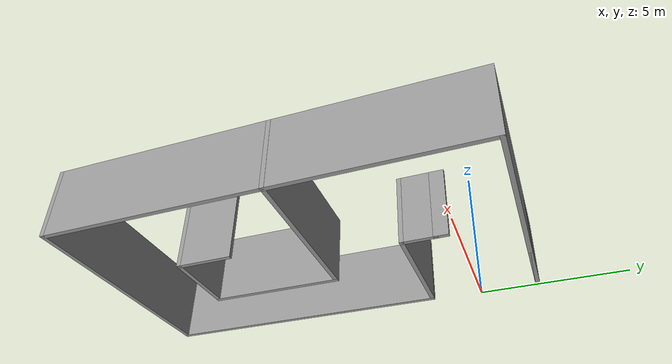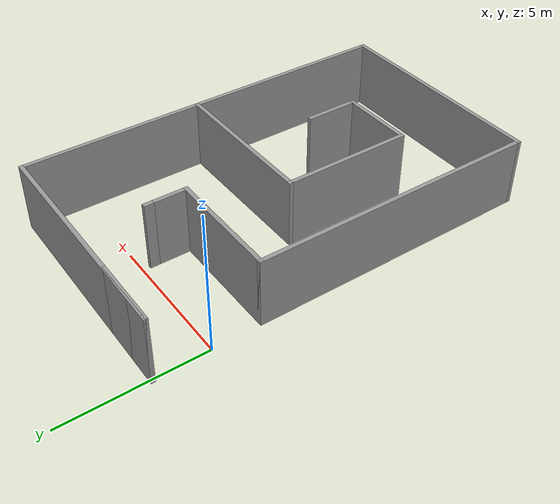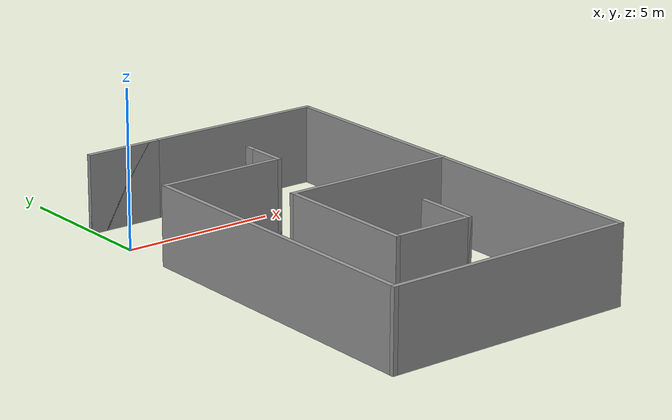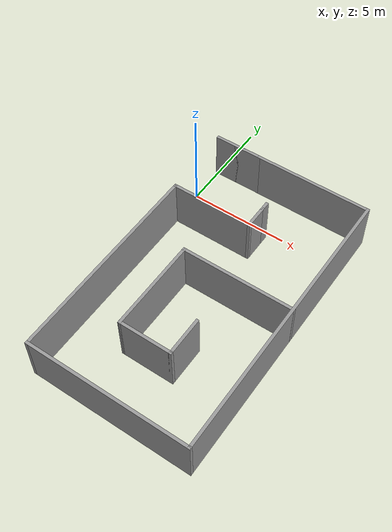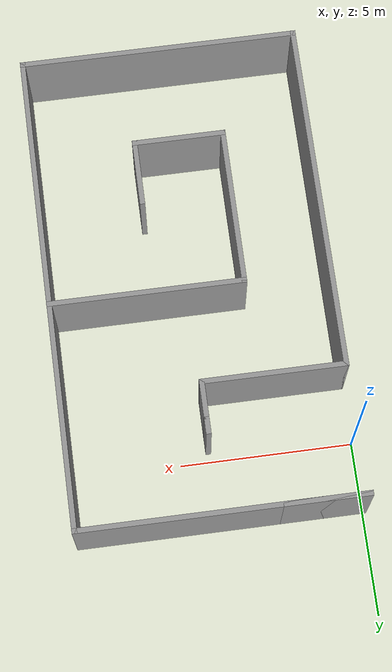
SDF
<?xml version='1.0'?>
<sdf version='1.7'>
  <model name='simple1.world'>
    <pose>4.06075 -5.08444 0 0 -0 0</pose>
    <link name='Wall_45'>
      <collision name='Wall_45_Collision'>
        <geometry>
          <box>
            <size>2.5 0.15 2.5</size>
          </box>
        </geometry>
        <pose>0 0 1.25 0 -0 0</pose>
      </collision>
      <visual name='Wall_45_Visual'>
        <pose>0 0 1.25 0 -0 0</pose>
        <geometry>
          <box>
            <size>2.5 0.15 2.5</size>
          </box>
        </geometry>
        <material>
          <script>
            <uri>file://media/materials/scripts/gazebo.material</uri>
            <name>Gazebo/Grey</name>
          </script>
          <ambient>1 1 1 1</ambient>
        </material>
        <meta>
          <layer>0</layer>
        </meta>
      </visual>
      <pose>-2.92644 7.05 0 0 -0 3.14159</pose>
    </link>
    <link name='Wall_46'>
      <collision name='Wall_46_Collision'>
        <geometry>
          <box>
            <size>2.5 0.15 2.5</size>
          </box>
        </geometry>
        <pose>0 0 1.25 0 -0 0</pose>
      </collision>
      <visual name='Wall_46_Visual'>
        <pose>0 0 1.25 0 -0 0</pose>
        <geometry>
          <box>
            <size>2.5 0.15 2.5</size>
          </box>
        </geometry>
        <material>
          <script>
            <uri>file://media/materials/scripts/gazebo.material</uri>
            <name>Gazebo/Grey</name>
          </script>
          <ambient>1 1 1 1</ambient>
        </material>
        <meta>
          <layer>0</layer>
        </meta>
      </visual>
      <pose>-2.92644 7.05 0 0 -0 0</pose>
    </link>
    <link name='Wall_50'>
      <collision name='Wall_50_Collision'>
        <geometry>
          <box>
            <size>6 0.15 2.5</size>
          </box>
        </geometry>
        <pose>0 0 1.25 0 -0 0</pose>
      </collision>
      <visual name='Wall_50_Visual'>
        <pose>0 0 1.25 0 -0 0</pose>
        <geometry>
          <box>
            <size>6 0.15 2.5</size>
          </box>
        </geometry>
        <material>
          <script>
            <uri>file://media/materials/scripts/gazebo.material</uri>
            <name>Gazebo/Grey</name>
          </script>
          <ambient>1 1 1 1</ambient>
        </material>
        <meta>
          <layer>0</layer>
        </meta>
      </visual>
      <pose>1.17356 7.05 0 0 -0 0</pose>
    </link>
    <link name='Wall_51'>
      <collision name='Wall_51_Collision'>
        <geometry>
          <box>
            <size>14.25 0.15 2.5</size>
          </box>
        </geometry>
        <pose>0 0 1.25 0 -0 0</pose>
      </collision>
      <visual name='Wall_51_Visual'>
        <pose>0 0 1.25 0 -0 0</pose>
        <geometry>
          <box>
            <size>14.25 0.15 2.5</size>
          </box>
        </geometry>
        <material>
          <script>
            <uri>file://media/materials/scripts/gazebo.material</uri>
            <name>Gazebo/Grey</name>
          </script>
          <ambient>1 1 1 1</ambient>
        </material>
        <meta>
          <layer>0</layer>
        </meta>
      </visual>
      <pose>4.09856 0 0 0 -0 -1.5708</pose>
    </link>
    <link name='Wall_52'>
      <collision name='Wall_52_Collision'>
        <geometry>
          <box>
            <size>8.25 0.15 2.5</size>
          </box>
        </geometry>
        <pose>0 0 1.25 0 -0 0</pose>
      </collision>
      <visual name='Wall_52_Visual'>
        <pose>0 0 1.25 0 -0 0</pose>
        <geometry>
          <box>
            <size>8.25 0.15 2.5</size>
          </box>
        </geometry>
        <material>
          <script>
            <uri>file://media/materials/scripts/gazebo.material</uri>
            <name>Gazebo/Grey</name>
          </script>
          <ambient>1 1 1 1</ambient>
        </material>
        <meta>
          <layer>0</layer>
        </meta>
      </visual>
      <pose>0.048556 -7.05 0 0 -0 3.14159</pose>
    </link>
    <link name='Wall_53'>
      <collision name='Wall_53_Collision'>
        <geometry>
          <box>
            <size>10.5 0.15 2.5</size>
          </box>
        </geometry>
        <pose>0 0 1.25 0 -0 0</pose>
      </collision>
      <visual name='Wall_53_Visual'>
        <pose>0 0 1.25 0 -0 0</pose>
        <geometry>
          <box>
            <size>10.5 0.15 2.5</size>
          </box>
        </geometry>
        <material>
          <script>
            <uri>file://media/materials/scripts/gazebo.material</uri>
            <name>Gazebo/Grey</name>
          </script>
          <ambient>1 1 1 1</ambient>
        </material>
        <meta>
          <layer>0</layer>
        </meta>
      </visual>
      <pose>-4.00144 -1.875 0 0 -0 1.5708</pose>
    </link>
    <link name='Wall_55'>
      <collision name='Wall_55_Collision'>
        <geometry>
          <box>
            <size>4.25 0.15 2.5</size>
          </box>
        </geometry>
        <pose>0 0 1.25 0 -0 0</pose>
      </collision>
      <visual name='Wall_55_Visual'>
        <pose>0 0 1.25 0 -0 0</pose>
        <geometry>
          <box>
            <size>4.25 0.15 2.5</size>
          </box>
        </geometry>
        <material>
          <script>
            <uri>file://media/materials/scripts/gazebo.material</uri>
            <name>Gazebo/Grey</name>
          </script>
          <ambient>1 1 1 1</ambient>
        </material>
        <meta>
          <layer>0</layer>
        </meta>
      </visual>
      <pose>-1.95144 3.3 0 0 -0 0</pose>
    </link>
    <link name='Wall_56'>
      <collision name='Wall_56_Collision'>
        <geometry>
          <box>
            <size>1.25 0.15 2.5</size>
          </box>
        </geometry>
        <pose>0 0 1.25 0 -0 0</pose>
      </collision>
      <visual name='Wall_56_Visual'>
        <pose>0 0 1.25 0 -0 0</pose>
        <geometry>
          <box>
            <size>1.25 0.15 2.5</size>
          </box>
        </geometry>
        <material>
          <script>
            <uri>file://media/materials/scripts/gazebo.material</uri>
            <name>Gazebo/Grey</name>
          </script>
          <ambient>1 1 1 1</ambient>
        </material>
        <meta>
          <layer>0</layer>
        </meta>
      </visual>
      <pose>0.098557 3.85 0 0 -0 1.5708</pose>
    </link>
    <link name='Wall_57'>
      <collision name='Wall_57_Collision'>
        <geometry>
          <box>
            <size>0.5 0.15 2.5</size>
          </box>
        </geometry>
        <pose>0 0 1.25 0 -0 0</pose>
      </collision>
      <visual name='Wall_57_Visual'>
        <pose>0 0 1.25 0 -0 0</pose>
        <geometry>
          <box>
            <size>0.5 0.15 2.5</size>
          </box>
        </geometry>
        <material>
          <script>
            <uri>file://media/materials/scripts/gazebo.material</uri>
            <name>Gazebo/Grey</name>
          </script>
          <ambient>1 1 1 1</ambient>
        </material>
        <meta>
          <layer>0</layer>
        </meta>
      </visual>
      <pose>0.098557 4.575 0 0 -0 1.5708</pose>
    </link>
    <link name='Wall_59'>
      <collision name='Wall_59_Collision'>
        <geometry>
          <box>
            <size>5.75 0.15 2.5</size>
          </box>
        </geometry>
        <pose>0 0 1.25 0 -0 0</pose>
      </collision>
      <visual name='Wall_59_Visual'>
        <pose>0 0 1.25 0 -0 0</pose>
        <geometry>
          <box>
            <size>5.75 0.15 2.5</size>
          </box>
        </geometry>
        <material>
          <script>
            <uri>file://media/materials/scripts/gazebo.material</uri>
            <name>Gazebo/Grey</name>
          </script>
          <ambient>1 1 1 1</ambient>
        </material>
        <meta>
          <layer>0</layer>
        </meta>
      </visual>
      <pose>1.30144 0.475889 0 0 -0 3.14159</pose>
    </link>
    <link name='Wall_60'>
      <collision name='Wall_60_Collision'>
        <geometry>
          <box>
            <size>4.75 0.15 2.5</size>
          </box>
        </geometry>
        <pose>0 0 1.25 0 -0 0</pose>
      </collision>
      <visual name='Wall_60_Visual'>
        <pose>0 0 1.25 0 -0 0</pose>
        <geometry>
          <box>
            <size>4.75 0.15 2.5</size>
          </box>
        </geometry>
        <material>
          <script>
            <uri>file://media/materials/scripts/gazebo.material</uri>
            <name>Gazebo/Grey</name>
          </script>
          <ambient>1 1 1 1</ambient>
        </material>
        <meta>
          <layer>0</layer>
        </meta>
      </visual>
      <pose>-1.49856 -1.82411 0 0 -0 -1.5708</pose>
    </link>
    <link name='Wall_61'>
      <collision name='Wall_61_Collision'>
        <geometry>
          <box>
            <size>2.75 0.15 2.5</size>
          </box>
        </geometry>
        <pose>0 0 1.25 0 -0 0</pose>
      </collision>
      <visual name='Wall_61_Visual'>
        <pose>0 0 1.25 0 -0 0</pose>
        <geometry>
          <box>
            <size>2.75 0.15 2.5</size>
          </box>
        </geometry>
        <material>
          <script>
            <uri>file://media/materials/scripts/gazebo.material</uri>
            <name>Gazebo/Grey</name>
          </script>
          <ambient>1 1 1 1</ambient>
        </material>
        <meta>
          <layer>0</layer>
        </meta>
      </visual>
      <pose>-0.198556 -4.12411 0 0 -0 0</pose>
    </link>
    <link name='Wall_62'>
      <collision name='Wall_62_Collision'>
        <geometry>
          <box>
            <size>2 0.15 2.5</size>
          </box>
        </geometry>
        <pose>0 0 1.25 0 -0 0</pose>
      </collision>
      <visual name='Wall_62_Visual'>
        <pose>0 0 1.25 0 -0 0</pose>
        <geometry>
          <box>
            <size>2 0.15 2.5</size>
          </box>
        </geometry>
        <material>
          <script>
            <uri>file://media/materials/scripts/gazebo.material</uri>
            <name>Gazebo/Grey</name>
          </script>
          <ambient>1 1 1 1</ambient>
        </material>
        <meta>
          <layer>0</layer>
        </meta>
      </visual>
      <pose>1.10144 -3.19911 0 0 -0 1.5708</pose>
    </link>
    <static>1</static>
  </model>
</sdf>
